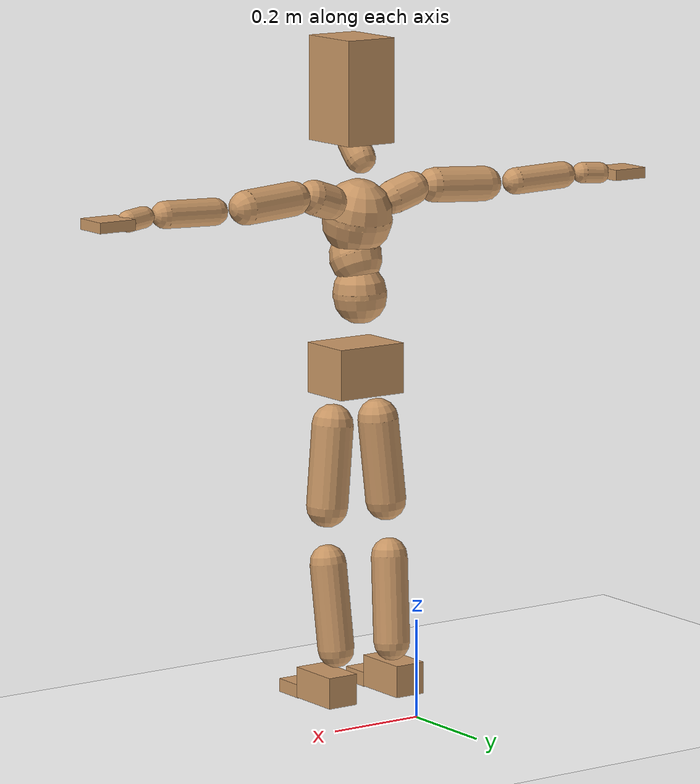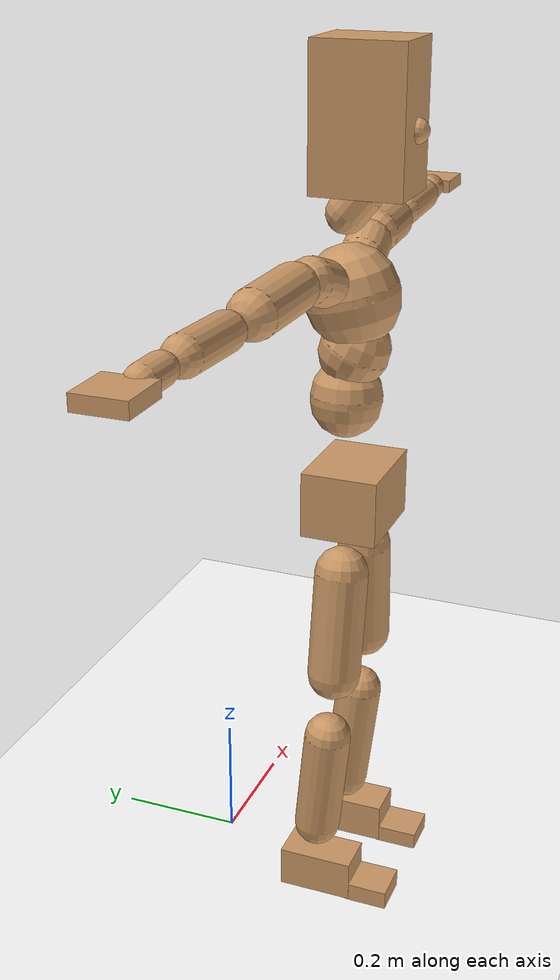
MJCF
<mujoco model="humanoid">
  <option integrator="implicitfast" />

  <visual>
    <global offwidth="1280" offheight="960" />
    <headlight active="1" ambient="0.34 0.34 0.34" diffuse="0.5 0.5 0.5" />
  </visual>

  <default>
    <joint damping="2" stiffness="2" armature="0.01" limited="true" solimplimit="0 .99 .01" />
    <geom condim="1" friction="0.7 0.005 0.0001" solimp=".99 .99 .003" solref="0.015 1" margin="0.001" rgba="0.8 0.6 .4 1" />
    <default class="smplcontact">
      <geom condim="3" friction="1. 0.005 0.0001" solref="0.015 1" solimp="0.98 0.98 0.001" priority="1" />
    </default>
    <default class="stiff_medium">
      <joint stiffness="10" />
    </default>
    <default class="stiff_medium_higher">
      <joint stiffness="50" />
    </default>
    <default class="stiff_high">
      <joint stiffness="100" />
    </default>
  </default>

  <asset>
    <texture type="skybox" builtin="gradient" rgb1="0.99 0.99 0.99" rgb2="0.608 0.828 0.892" width="100" />
    <texture builtin="flat" height="1278" mark="cross" markrgb="1 1 1" name="texgeom" random="0.01" rgb1="0.8 0.6 0.4" rgb2="0.8 0.6 0.4" type="cube" width="127" />
    <texture name="texplane" type="2d" builtin="checker" markrgb="1 1 1" rgb1="0.756 0.772 0.76" rgb2="0.6 0.6 0.6" width="100" height="100" />
    <material name="MatPlane" reflectance="0.5" texture="texplane" texrepeat="1 1" texuniform="true" />
    <material name="geom" texture="texgeom" texuniform="true" />
  </asset>

  <worldbody>
    <light name="tracking_light" pos="0 0 7" dir="0 0 -1" directional="true" cutoff="100" exponent="1" diffuse="1 1 1" specular="0.1 0.1 0.1" mode="trackcom" />
    <camera name="back" pos="0 3 2.4" xyaxes="-1 0 0 0 -1 2" mode="trackcom" />
    <camera name="side" pos="-3 0 2.4" xyaxes="0 -1 0 1 0 2" mode="trackcom" />
    <camera name="front_side" pos="-2.8 -2.8 0.8" xyaxes="0.5 -0.5 0 0.1 0.1 1" mode="trackcom" />
    <geom condim="3" name="floor" pos="0 0 0" rgba="1 1 1 1" size="100 100 .2" type="plane" material="MatPlane" />
    <body name="Pelvis" pos="-0.0018 -0.2233 0.693717" euler="90 0 0">
      <site name="Pelvis" size="0.01" />
      <freejoint name="Pelvis" />
      <geom type="box" pos="-0.0000 -0.0121 -0.0055" size="0.0763794 0.0515865 0.059303" quat="1.0000 0.0000 0.0000 0.0000" density="3165.830099" name="Pelvis" />
      <body name="L_Hip" pos="0.0515531 -0.0677979 -0.00504404">
        <joint name="L_Hip_x" type="hinge" pos="0 0 0" axis="1 0 0" stiffness="10" range="-160.0 22.92" class="stiff_medium" damping="15" />
        <joint name="L_Hip_y" type="hinge" pos="0 0 0" axis="0 1 0" stiffness="10" range="-70.0 70.0" class="stiff_medium" damping="10" />
        <joint name="L_Hip_z" type="hinge" pos="0 0 0" axis="0 0 1" stiffness="10" range="-28.65 90.0" class="stiff_medium" damping="10" />
        <geom type="capsule" density="2040.816327" fromto="0.00511822 -0.0556328 -0.000667594 0.0203245 -0.22268 -0.00267038" size="0.0424851" name="L_Hip" />
        <body name="L_Knee" pos="0.0254427 -0.278312 -0.00333797">
          <joint name="L_Knee_x" type="hinge" pos="0 0 0" axis="1 0 0" range="-5.16 171.89" damping="8" />
          <joint name="L_Knee_y" type="hinge" pos="0 0 0" axis="0 1 0" range="-4.58 6.88" damping="8" />
          <joint name="L_Knee_z" type="hinge" pos="0 0 0" axis="0 0 1" range="-6.88 4.58" damping="8" />
          <geom type="capsule" density="1234.567901" fromto="-0.00200278 -0.059045 -0.00645341 -0.0080853 -0.23618 -0.025962" size="0.037373" name="L_Knee" />
          <body name="L_Ankle" pos="-0.0100881 -0.295225 -0.0324154">
            <joint name="L_Ankle_x" type="hinge" pos="0 0 0" axis="1 0 0" range="-45.84 45.84" class="stiff_medium" damping="6" />
            <joint name="L_Ankle_y" type="hinge" pos="0 0 0" axis="0 1 0" range="-74.48 22.92" class="stiff_medium" damping="3" />
            <joint name="L_Ankle_z" type="hinge" pos="0 0 0" axis="0 0 1" range="-4.58 4.58" class="stiff_medium" damping="6" />
            <geom type="box" pos="0.0172833 -0.0177283 0.0179509" size="0.0333663 0.0320538 0.0587192" quat="1.0000 0.0000 0.0000 0.0000" density="449.071558" name="L_Ankle" class="smplcontact" />
            <body name="L_Toe" pos="0.0195828 -0.0413908 0.0884933">
              <joint name="L_Toe_x" type="hinge" pos="0 0 0" axis="1 0 0" range="-91.67 22.92" />
              <joint name="L_Toe_y" type="hinge" pos="0 0 0" axis="0 1 0" range="-4.58 4.58" />
              <joint name="L_Toe_z" type="hinge" pos="0 0 0" axis="0 0 1" range="-4.58 4.58" />
              <geom type="box" pos="-0.00222531 0.00407974 0.0183959" size="0.0330209 0.0138163 0.0342644" quat="1.0000 0.0000 0.0000 0.0000" density="423.206892" name="L_Toe" class="smplcontact" />
            </body>
          </body>
        </body>
      </body>
      <body name="R_Hip" pos="-0.0502179 -0.0671303 -0.00318962">
        <joint name="R_Hip_x" type="hinge" pos="0 0 0" axis="1 0 0" stiffness="10" range="-160.0 22.92" class="stiff_medium" damping="15" />
        <joint name="R_Hip_y" type="hinge" pos="0 0 0" axis="0 1 0" stiffness="10" range="-70.0 70.0" class="stiff_medium" damping="10" />
        <joint name="R_Hip_z" type="hinge" pos="0 0 0" axis="0 0 1" stiffness="10" range="-90.0 28.65" class="stiff_medium" damping="10" />
        <geom type="capsule" density="2040.816327" fromto="-0.00571164 -0.0567455 -0.00133519 -0.0226982 -0.227056 -0.00526657" size="0.0418633" name="R_Hip" />
        <body name="R_Knee" pos="-0.0284098 -0.283802 -0.00660176">
          <joint name="R_Knee_x" type="hinge" pos="0 0 0" axis="1 0 0" range="-5.16 171.89" damping="8" />
          <joint name="R_Knee_y" type="hinge" pos="0 0 0" axis="0 1 0" range="-6.88 4.58" damping="8" />
          <joint name="R_Knee_z" type="hinge" pos="0 0 0" axis="0 0 1" range="-4.58 6.88" damping="8" />
          <geom type="capsule" density="1234.567901" fromto="0.00237367 -0.0591192 -0.00630505 0.00934632 -0.236402 -0.0250719" size="0.037373" name="R_Knee" />
          <body name="R_Ankle" pos="0.01172 -0.295522 -0.0313769">
            <joint name="R_Ankle_x" type="hinge" pos="0 0 0" axis="1 0 0" range="-45.84 45.84" class="stiff_medium" damping="6" />
            <joint name="R_Ankle_y" type="hinge" pos="0 0 0" axis="0 1 0" range="-22.92 74.48" class="stiff_medium" damping="3" />
            <joint name="R_Ankle_z" type="hinge" pos="0 0 0" axis="0 0 1" range="-4.58 4.58" class="stiff_medium" damping="6" />
            <geom type="box" pos="-0.0157255 -0.0129068 0.0189893" size="0.0333663 0.0330209 0.0597554" quat="1.0000 0.0000 0.0000 0.0000" density="434.700981" name="R_Ankle" class="smplcontact" />
            <body name="R_Toe" pos="-0.018841 -0.0356792 0.0914604">
              <joint name="R_Toe_x" type="hinge" pos="0 0 0" axis="1 0 0" range="-91.67 22.92" />
              <joint name="R_Toe_y" type="hinge" pos="0 0 0" axis="0 1 0" range="-4.58 4.58" />
              <joint name="R_Toe_z" type="hinge" pos="0 0 0" axis="0 0 1" range="-4.58 4.58" />
              <geom type="box" pos="0.00311544 0.00333797 0.0168382" size="0.03309 0.0149216 0.0340571" quat="1.0000 0.0000 0.0000 0.0000" density="407.384095" name="R_Toe" class="smplcontact" />
            </body>
          </body>
        </body>
      </body>
      <body name="Torso" pos="-0.00199298 0.0868938 -0.021285">
        <joint name="Torso_x" type="hinge" pos="0 0 0" axis="1 0 0" range="-25.78 57.3" class="stiff_medium" damping="15" />
        <joint name="Torso_y" type="hinge" pos="0 0 0" axis="0 1 0" range="-57.3 57.3" class="stiff_high" damping="20" />
        <joint name="Torso_z" type="hinge" pos="0 0 0" axis="0 0 1" range="-34.38 34.38" class="stiff_high" damping="20" />
        <geom type="capsule" density="2040.816327" fromto="0.00199298 0.0484692 0.000398596 0.00239157 0.0592313 0.000478315" size="0.0549446" name="Torso" />
        <body name="Spine" pos="0.00438455 0.10778 0.00087691">
          <joint name="Spine_x" type="hinge" pos="0 0 0" axis="1 0 0" stiffness="10" range="-25.78 57.3" class="stiff_medium" damping="15" />
          <joint name="Spine_y" type="hinge" pos="0 0 0" axis="0 1 0" stiffness="10" range="-57.3 57.3" class="stiff_high" damping="8" />
          <joint name="Spine_z" type="hinge" pos="0 0 0" axis="0 0 1" stiffness="20" range="-34.38 34.38" class="stiff_high" damping="12" />
          <geom type="capsule" density="2040.816327" fromto="0.000558034 0.0189731 0.00908798 0.000637753 0.0231983 0.0111607" size="0.0539443" name="Spine" />
          <body name="Chest" pos="0.00119579 0.0421714 0.0202487">
            <joint name="Chest_x" type="hinge" pos="0 0 0" axis="1 0 0" stiffness="10" range="-25.78 57.3" class="stiff_medium" damping="15" />
            <joint name="Chest_y" type="hinge" pos="0 0 0" axis="0 1 0" stiffness="10" range="-57.3 57.3" class="stiff_high" damping="8" />
            <joint name="Chest_z" type="hinge" pos="0 0 0" axis="0 0 1" stiffness="20" range="-34.38 34.38" class="stiff_high" damping="12" />
            <geom type="capsule" density="2040.816327" fromto="-0.000717472 0.0543684 -0.0137914 -0.000797191 0.066406 -0.0169005" size="0.0715923" name="Chest" />
            <body name="Neck" pos="-0.00223214 0.170519 -0.0341995">
              <joint name="Neck_x" type="hinge" pos="0 0 0" axis="1 0 0" range="-28.65 57.3" class="stiff_medium_higher" damping="10" />
              <joint name="Neck_y" type="hinge" pos="0 0 0" axis="0 1 0" range="-40.11 40.11" class="stiff_medium_higher" damping="10" />
              <joint name="Neck_z" type="hinge" pos="0 0 0" axis="0 0 1" range="-40.11 40.11" class="stiff_medium_higher" damping="10" />
              <geom type="capsule" density="1000" fromto="0.000797191 0.0103635 0.00821107 0.00326848 0.0414539 0.0327646" size="0.0311519" name="Neck" />
              <body name="Head" pos="0.00498363 0.0622953 0.0491654">
                <joint name="Head_x" type="hinge" pos="0 0 0" axis="1 0 0" range="-28.65 57.3" class="stiff_medium_higher" damping="2" />
                <joint name="Head_y" type="hinge" pos="0 0 0" axis="0 1 0" range="-40.11 40.11" class="stiff_medium_higher" damping="2" />
                <joint name="Head_z" type="hinge" pos="0 0 0" axis="0 0 1" range="-40.11 40.11" class="stiff_medium_higher" damping="2" />
                <geom type="box" pos="-0.00402524 0.0839549 -0.0111173" size="0.0554893 0.105668 0.0695906" quat="1.0000 0.0000 0.0000 0.0000" density="1018.069894" name="Head" />
                <geom type="capsule" name="nose" size="0.0183133 0.00915666" pos="0 0.0670873 0.0479195" quat="1 0 0 0" mass="0" contype="0" conaffinity="0" />
              </body>
            </body>
            <body name="L_Thorax" pos="0.0602206 0.0930056 -0.0260599">
              <joint name="L_Thorax_x" type="hinge" pos="0 0 0" axis="1 0 0" range="-10.89 4.58" class="stiff_medium_higher" damping="20" />
              <joint name="L_Thorax_y" type="hinge" pos="0 0 0" axis="0 1 0" range="-28.65 17.19" class="stiff_medium_higher" damping="20" />
              <joint name="L_Thorax_z" type="hinge" pos="0 0 0" axis="0 0 1" range="-31.51 40.11" class="stiff_medium_higher" damping="20" />
              <geom type="capsule" density="1000" fromto="0.0139088 0.00466174 -0.0013756 0.0556352 0.018647 -0.00542596" size="0.0352323" name="L_Thorax" />
              <body name="L_Shoulder" pos="0.069544 0.0233087 -0.00680156">
                <joint name="L_Shoulder_x" type="hinge" pos="0 0 0" axis="1 0 0" range="-97.4 97.4" class="stiff_medium" damping="6" />
                <joint name="L_Shoulder_y" type="hinge" pos="0 0 0" axis="0 1 0" range="-108.86 80.21" class="stiff_medium" damping="6" />
                <joint name="L_Shoulder_z" type="hinge" pos="0 0 0" axis="0 0 1" range="-97.4 85.94" class="stiff_medium" damping="6" />
                <geom type="capsule" density="1000" fromto="0.039663 -0.00198697 -0.00420321 0.158729 -0.00779505 -0.0168128" size="0.0349618" name="L_Shoulder" />
                <body name="L_Elbow" pos="0.198392 -0.00978202 -0.0210161">
                  <joint name="L_Elbow_x" type="hinge" pos="0 0 0" axis="1 0 0" range="-17.19 4.58" damping="5" />
                  <joint name="L_Elbow_y" type="hinge" pos="0 0 0" axis="0 1 0" range="-180.0 17.19" damping="5" />
                  <joint name="L_Elbow_z" type="hinge" pos="0 0 0" axis="0 0 1" range="-100.84 4.58" damping="5" />
                  <geom type="capsule" density="1000" fromto="0.0380582 0.0013756 -0.000152844 0.152386 0.00550239 -0.000687798" size="0.0273879" name="L_Elbow" />
                  <body name="L_Wrist" pos="0.190444 0.00687798 -0.000917064">
                    <joint name="L_Wrist_x" type="hinge" pos="0 0 0" axis="1 0 0" range="-180.0 22.92" />
                    <joint name="L_Wrist_y" type="hinge" pos="0 0 0" axis="0 1 0" range="-17.19 17.19" />
                    <joint name="L_Wrist_z" type="hinge" pos="0 0 0" axis="0 0 1" range="-22.92 22.92" />
                    <geom type="capsule" density="1000" fromto="0.0128389 -0.00122275 -0.00229266 0.0513556 -0.00496743 -0.00917064" size="0.0215045" name="L_Wrist" class="smplcontact" />
                    <body name="L_Hand" pos="0.0641945 -0.00626661 -0.0113869">
                      <joint name="L_Hand_x" type="hinge" pos="0 0 0" axis="1 0 0" range="-17.19 17.19" />
                      <joint name="L_Hand_y" type="hinge" pos="0 0 0" axis="0 1 0" range="-51.57 51.57" />
                      <joint name="L_Hand_z" type="hinge" pos="0 0 0" axis="0 0 1" range="-91.67 91.67" />
                      <geom type="box" pos="0.0376761 0.00076422 -0.00443248" size="0.0395602 0.0106846 0.0363819" quat="1.0000 0.0000 0.0000 0.0000" density="400.552564" name="L_Hand" class="smplcontact" />
                    </body>
                  </body>
                </body>
              </body>
            </body>
            <body name="R_Thorax" pos="-0.0625132 0.0907894 -0.0294989">
              <joint name="R_Thorax_x" type="hinge" pos="0 0 0" axis="1 0 0" range="-10.89 4.58" class="stiff_medium_higher" damping="20" />
              <joint name="R_Thorax_y" type="hinge" pos="0 0 0" axis="0 1 0" range="-17.19 28.65" class="stiff_medium_higher" damping="20" />
              <joint name="R_Thorax_z" type="hinge" pos="0 0 0" axis="0 0 1" range="-40.11 31.51" class="stiff_medium_higher" damping="20" />
              <geom type="capsule" density="1000" fromto="-0.014673 0.00496743 -0.0013756 -0.0586921 0.0198697 -0.00557881" size="0.034556" name="R_Thorax" />
              <body name="R_Shoulder" pos="-0.0733651 0.0249136 -0.0069544">
                <joint name="R_Shoulder_x" type="hinge" pos="0 0 0" axis="1 0 0" range="-97.4 97.4" class="stiff_medium" damping="6" />
                <joint name="R_Shoulder_y" type="hinge" pos="0 0 0" axis="0 1 0" range="-80.21 108.86" class="stiff_medium" damping="6" />
                <joint name="R_Shoulder_z" type="hinge" pos="0 0 0" axis="0 0 1" range="-85.94 97.4" class="stiff_medium" damping="6" />
                <geom type="capsule" density="1000" fromto="-0.038746 -0.00206339 -0.00328615 -0.155137 -0.00817716 -0.0130682" size="0.0359085" name="R_Shoulder" />
                <body name="R_Elbow" pos="-0.193883 -0.0101641 -0.0163543">
                  <joint name="R_Elbow_x" type="hinge" pos="0 0 0" axis="1 0 0" range="-17.19 4.58" damping="5" />
                  <joint name="R_Elbow_y" type="hinge" pos="0 0 0" axis="0 1 0" range="-17.19 180.0" damping="5" />
                  <joint name="R_Elbow_z" type="hinge" pos="0 0 0" axis="0 0 1" range="-4.58 100.84" damping="5" />
                  <geom type="capsule" density="1000" fromto="-0.0390517 0.00122275 -0.000840642 -0.156054 0.00473817 -0.00336257" size="0.0275907" name="R_Elbow" />
                  <body name="R_Wrist" pos="-0.195105 0.00596092 -0.00427963">
                    <joint name="R_Wrist_x" type="hinge" pos="0 0 0" axis="1 0 0" range="-180.0 22.92" />
                    <joint name="R_Wrist_y" type="hinge" pos="0 0 0" axis="0 1 0" range="-17.19 17.19" />
                    <joint name="R_Wrist_z" type="hinge" pos="0 0 0" axis="0 0 1" range="-22.92 22.92" />
                    <geom type="capsule" density="1000" fromto="-0.0129153 -0.000917064 -0.00160486 -0.0517377 -0.00374468 -0.00634303" size="0.0220455" name="R_Wrist" class="smplcontact" />
                    <body name="R_Hand" pos="-0.064653 -0.00466174 -0.00787147">
                      <joint name="R_Hand_x" type="hinge" pos="0 0 0" axis="1 0 0" range="-17.19 17.19" />
                      <joint name="R_Hand_y" type="hinge" pos="0 0 0" axis="0 1 0" range="-51.57 51.57" />
                      <joint name="R_Hand_z" type="hinge" pos="0 0 0" axis="0 0 1" range="-91.67 91.67" />
                      <geom type="box" pos="-0.035307 -0.000687798 -0.00603734" size="0.0384782 0.0110904 0.0369229" quat="1.0000 0.0000 0.0000 0.0000" density="403.679611" name="R_Hand" class="smplcontact" />
                    </body>
                  </body>
                </body>
              </body>
            </body>
          </body>
        </body>
      </body>
    </body>
  </worldbody>
  <actuator>
    <general name="L_Hip_x" joint="L_Hip_x" biastype="affine" gainprm="287.33006409732246" biasprm="-215.3247604770444 -180 -2.0" ctrllimited="true" ctrlrange="-1 1" forcerange="-360 360" />
    <general name="L_Hip_y" joint="L_Hip_y" biastype="affine" gainprm="219.9114857512855" biasprm="0.0 -180 -2.0" ctrllimited="true" ctrlrange="-1 1" forcerange="-360 360" />
    <general name="L_Hip_z" joint="L_Hip_z" biastype="affine" gainprm="186.3749841742145" biasprm="96.3683546488669 -180 -2.0" ctrllimited="true" ctrlrange="-1 1" forcerange="-360 360" />
    <general name="L_Knee_x" joint="L_Knee_x" biastype="affine" gainprm="278.10948965903646" biasprm="261.8988715665131 -180 -2.0" ctrllimited="true" ctrlrange="-1 1" forcerange="-360 360" />
    <general name="L_Knee_y" joint="L_Knee_y" biastype="affine" gainprm="18.001325905069514" biasprm="3.612831551628262 -180 -2.0" ctrllimited="true" ctrlrange="-1 1" forcerange="-360 360" />
    <general name="L_Knee_z" joint="L_Knee_z" biastype="affine" gainprm="18.001325905069514" biasprm="-3.612831551628262 -180 -2.0" ctrllimited="true" ctrlrange="-1 1" forcerange="-360 360" />
    <general name="L_Ankle_x" joint="L_Ankle_x" biastype="affine" gainprm="72.00530362027807" biasprm="0.0 -90 -2.0" ctrllimited="true" ctrlrange="-1 1" forcerange="-180 180" />
    <general name="L_Ankle_y" joint="L_Ankle_y" biastype="affine" gainprm="76.49778111491148" biasprm="-40.49512930477244 -90 -2.0" ctrllimited="true" ctrlrange="-1 1" forcerange="-180 180" />
    <general name="L_Ankle_z" joint="L_Ankle_z" biastype="affine" gainprm="7.1942471767206255" biasprm="0.0 -90 -2.0" ctrllimited="true" ctrlrange="-1 1" forcerange="-180 180" />
    <general name="L_Toe_x" joint="L_Toe_x" biastype="affine" gainprm="71.99902043497087" biasprm="-43.19689898685965 -72 -0.8" ctrllimited="true" ctrlrange="-1 1" forcerange="-144 144" />
    <general name="L_Toe_y" joint="L_Toe_y" biastype="affine" gainprm="5.755397741376501" biasprm="0.0 -72 -0.8" ctrllimited="true" ctrlrange="-1 1" forcerange="-144 144" />
    <general name="L_Toe_z" joint="L_Toe_z" biastype="affine" gainprm="5.755397741376501" biasprm="0.0 -72 -0.8" ctrllimited="true" ctrlrange="-1 1" forcerange="-144 144" />
    <general name="R_Hip_x" joint="R_Hip_x" biastype="affine" gainprm="287.33006409732246" biasprm="-215.3247604770444 -180 -2.0" ctrllimited="true" ctrlrange="-1 1" forcerange="-360 360" />
    <general name="R_Hip_y" joint="R_Hip_y" biastype="affine" gainprm="219.9114857512855" biasprm="0.0 -180 -2.0" ctrllimited="true" ctrlrange="-1 1" forcerange="-360 360" />
    <general name="R_Hip_z" joint="R_Hip_z" biastype="affine" gainprm="186.3749841742145" biasprm="-96.3683546488669 -180 -2.0" ctrllimited="true" ctrlrange="-1 1" forcerange="-360 360" />
    <general name="R_Knee_x" joint="R_Knee_x" biastype="affine" gainprm="278.10948965903646" biasprm="261.8988715665131 -180 -2.0" ctrllimited="true" ctrlrange="-1 1" forcerange="-360 360" />
    <general name="R_Knee_y" joint="R_Knee_y" biastype="affine" gainprm="18.001325905069514" biasprm="-3.612831551628262 -180 -2.0" ctrllimited="true" ctrlrange="-1 1" forcerange="-360 360" />
    <general name="R_Knee_z" joint="R_Knee_z" biastype="affine" gainprm="18.001325905069514" biasprm="3.612831551628262 -180 -2.0" ctrllimited="true" ctrlrange="-1 1" forcerange="-360 360" />
    <general name="R_Ankle_x" joint="R_Ankle_x" biastype="affine" gainprm="72.00530362027807" biasprm="0.0 -90 -2.0" ctrllimited="true" ctrlrange="-1 1" forcerange="-180 180" />
    <general name="R_Ankle_y" joint="R_Ankle_y" biastype="affine" gainprm="76.49778111491148" biasprm="40.49512930477244 -90 -2.0" ctrllimited="true" ctrlrange="-1 1" forcerange="-180 180" />
    <general name="R_Ankle_z" joint="R_Ankle_z" biastype="affine" gainprm="7.1942471767206255" biasprm="0.0 -90 -2.0" ctrllimited="true" ctrlrange="-1 1" forcerange="-180 180" />
    <general name="R_Toe_x" joint="R_Toe_x" biastype="affine" gainprm="71.99902043497087" biasprm="-43.19689898685965 -72 -0.8" ctrllimited="true" ctrlrange="-1 1" forcerange="-144 144" />
    <general name="R_Toe_y" joint="R_Toe_y" biastype="affine" gainprm="5.755397741376501" biasprm="0.0 -72 -0.8" ctrllimited="true" ctrlrange="-1 1" forcerange="-144 144" />
    <general name="R_Toe_z" joint="R_Toe_z" biastype="affine" gainprm="5.755397741376501" biasprm="0.0 -72 -0.8" ctrllimited="true" ctrlrange="-1 1" forcerange="-144 144" />
    <general name="Torso_x" joint="Torso_x" biastype="affine" gainprm="174.00234510682668" biasprm="66.0153336274335 -240 -4.0" ctrllimited="true" ctrlrange="-1 1" forcerange="-360 360" />
    <general name="Torso_y" joint="Torso_y" biastype="affine" gainprm="240.0176787342602" biasprm="0.0 -240 -4.0" ctrllimited="true" ctrlrange="-1 1" forcerange="-360 360" />
    <general name="Torso_z" joint="Torso_z" biastype="affine" gainprm="144.01060724055614" biasprm="0.0 -240 -4.0" ctrllimited="true" ctrlrange="-1 1" forcerange="-360 360" />
    <general name="Spine_x" joint="Spine_x" biastype="affine" gainprm="174.00234510682668" biasprm="66.0153336274335 -240 -4.0" ctrllimited="true" ctrlrange="-1 1" forcerange="-360 360" />
    <general name="Spine_y" joint="Spine_y" biastype="affine" gainprm="240.0176787342602" biasprm="0.0 -240 -4.0" ctrllimited="true" ctrlrange="-1 1" forcerange="-360 360" />
    <general name="Spine_z" joint="Spine_z" biastype="affine" gainprm="144.01060724055614" biasprm="0.0 -240 -4.0" ctrllimited="true" ctrlrange="-1 1" forcerange="-360 360" />
    <general name="Chest_x" joint="Chest_x" biastype="affine" gainprm="174.00234510682668" biasprm="66.0153336274335 -240 -4.0" ctrllimited="true" ctrlrange="-1 1" forcerange="-360 360" />
    <general name="Chest_y" joint="Chest_y" biastype="affine" gainprm="240.0176787342602" biasprm="0.0 -240 -4.0" ctrllimited="true" ctrlrange="-1 1" forcerange="-360 360" />
    <general name="Chest_z" joint="Chest_z" biastype="affine" gainprm="144.01060724055614" biasprm="0.0 -240 -4.0" ctrllimited="true" ctrlrange="-1 1" forcerange="-360 360" />
    <general name="Neck_x" joint="Neck_x" biastype="affine" gainprm="27.00198885760427" biasprm="9.000662952534757 -36 -0.8" ctrllimited="true" ctrlrange="-1 1" forcerange="-72 72" />
    <general name="Neck_y" joint="Neck_y" biastype="affine" gainprm="25.20185626709732" biasprm="0.0 -36 -0.8" ctrllimited="true" ctrlrange="-1 1" forcerange="-72 72" />
    <general name="Neck_z" joint="Neck_z" biastype="affine" gainprm="25.20185626709732" biasprm="0.0 -36 -0.8" ctrllimited="true" ctrlrange="-1 1" forcerange="-72 72" />
    <general name="Head_x" joint="Head_x" biastype="affine" gainprm="18.001325905069514" biasprm="6.000441968356505 -24 -0.8" ctrllimited="true" ctrlrange="-1 1" forcerange="-48 48" />
    <general name="Head_y" joint="Head_y" biastype="affine" gainprm="16.801237511398213" biasprm="0.0 -24 -0.8" ctrllimited="true" ctrlrange="-1 1" forcerange="-48 48" />
    <general name="Head_z" joint="Head_z" biastype="affine" gainprm="16.801237511398213" biasprm="0.0 -24 -0.8" ctrllimited="true" ctrlrange="-1 1" forcerange="-48 48" />
    <general name="L_Thorax_x" joint="L_Thorax_x" biastype="affine" gainprm="16.200146117011364" biasprm="-6.6078165480505335 -120 -1.6" ctrllimited="true" ctrlrange="-1 1" forcerange="-240 240" />
    <general name="L_Thorax_y" joint="L_Thorax_y" biastype="affine" gainprm="48.00353574685204" biasprm="-12.00088393671301 -120 -1.6" ctrllimited="true" ctrlrange="-1 1" forcerange="-240 240" />
    <general name="L_Thorax_z" joint="L_Thorax_z" biastype="affine" gainprm="75.00028861670033" biasprm="9.00589894029074 -120 -1.6" ctrllimited="true" ctrlrange="-1 1" forcerange="-240 240" />
    <general name="L_Shoulder_x" joint="L_Shoulder_x" biastype="affine" gainprm="81.5976331892389" biasprm="0.0 -48 -1.6" ctrllimited="true" ctrlrange="-1 1" forcerange="-96 96" />
    <general name="L_Shoulder_y" joint="L_Shoulder_y" biastype="affine" gainprm="79.19745640189629" biasprm="-12.00088393671301 -48 -1.6" ctrllimited="true" ctrlrange="-1 1" forcerange="-96 96" />
    <general name="L_Shoulder_z" joint="L_Shoulder_z" biastype="affine" gainprm="76.79727961455369" biasprm="-4.800353574685214 -48 -1.6" ctrllimited="true" ctrlrange="-1 1" forcerange="-96 96" />
    <general name="L_Elbow_x" joint="L_Elbow_x" biastype="affine" gainprm="13.67849441372996" biasprm="-7.923096672353461 -72 -0.8" ctrllimited="true" ctrlrange="-1 1" forcerange="-144 144" />
    <general name="L_Elbow_y" joint="L_Elbow_y" biastype="affine" gainprm="123.89813107227425" biasprm="-102.29653998619085 -72 -0.8" ctrllimited="true" ctrlrange="-1 1" forcerange="-144 144" />
    <general name="L_Elbow_z" joint="L_Elbow_z" biastype="affine" gainprm="66.23733950828719" biasprm="-60.4819417669107 -72 -0.8" ctrllimited="true" ctrlrange="-1 1" forcerange="-144 144" />
    <general name="L_Wrist_x" joint="L_Wrist_x" biastype="affine" gainprm="21.24973270888136" biasprm="-16.449379134196157 -12 -0.8" ctrllimited="true" ctrlrange="-1 1" forcerange="-24 24" />
    <general name="L_Wrist_y" joint="L_Wrist_y" biastype="affine" gainprm="3.6002651810139037" biasprm="0.0 -12 -0.8" ctrllimited="true" ctrlrange="-1 1" forcerange="-24 24" />
    <general name="L_Wrist_z" joint="L_Wrist_z" biastype="affine" gainprm="4.800353574685205" biasprm="0.0 -12 -0.8" ctrllimited="true" ctrlrange="-1 1" forcerange="-24 24" />
    <general name="L_Hand_x" joint="L_Hand_x" biastype="affine" gainprm="3.6002651810139037" biasprm="0.0 -12 -0.8" ctrllimited="true" ctrlrange="-1 1" forcerange="-24 24" />
    <general name="L_Hand_y" joint="L_Hand_y" biastype="affine" gainprm="10.800795543041708" biasprm="0.0 -12 -0.8" ctrllimited="true" ctrlrange="-1 1" forcerange="-24 24" />
    <general name="L_Hand_z" joint="L_Hand_z" biastype="affine" gainprm="19.199319903638422" biasprm="0.0 -12 -0.8" ctrllimited="true" ctrlrange="-1 1" forcerange="-24 24" />
    <general name="R_Thorax_x" joint="R_Thorax_x" biastype="affine" gainprm="16.200146117011364" biasprm="-6.6078165480505335 -120 -1.6" ctrllimited="true" ctrlrange="-1 1" forcerange="-240 240" />
    <general name="R_Thorax_y" joint="R_Thorax_y" biastype="affine" gainprm="48.00353574685204" biasprm="12.000883936713002 -120 -1.6" ctrllimited="true" ctrlrange="-1 1" forcerange="-240 240" />
    <general name="R_Thorax_z" joint="R_Thorax_z" biastype="affine" gainprm="75.00028861670033" biasprm="-9.00589894029074 -120 -1.6" ctrllimited="true" ctrlrange="-1 1" forcerange="-240 240" />
    <general name="R_Shoulder_x" joint="R_Shoulder_x" biastype="affine" gainprm="81.5976331892389" biasprm="0.0 -48 -1.6" ctrllimited="true" ctrlrange="-1 1" forcerange="-96 96" />
    <general name="R_Shoulder_y" joint="R_Shoulder_y" biastype="affine" gainprm="79.19745640189629" biasprm="12.00088393671301 -48 -1.6" ctrllimited="true" ctrlrange="-1 1" forcerange="-96 96" />
    <general name="R_Shoulder_z" joint="R_Shoulder_z" biastype="affine" gainprm="76.79727961455369" biasprm="4.800353574685204 -48 -1.6" ctrllimited="true" ctrlrange="-1 1" forcerange="-96 96" />
    <general name="R_Elbow_x" joint="R_Elbow_x" biastype="affine" gainprm="13.67849441372996" biasprm="-7.923096672353461 -72 -0.8" ctrllimited="true" ctrlrange="-1 1" forcerange="-144 144" />
    <general name="R_Elbow_y" joint="R_Elbow_y" biastype="affine" gainprm="123.89813107227425" biasprm="102.29653998619085 -72 -0.8" ctrllimited="true" ctrlrange="-1 1" forcerange="-144 144" />
    <general name="R_Elbow_z" joint="R_Elbow_z" biastype="affine" gainprm="66.23733950828719" biasprm="60.481941766910694 -72 -0.8" ctrllimited="true" ctrlrange="-1 1" forcerange="-144 144" />
    <general name="R_Wrist_x" joint="R_Wrist_x" biastype="affine" gainprm="21.24973270888136" biasprm="-16.449379134196157 -12 -0.8" ctrllimited="true" ctrlrange="-1 1" forcerange="-24 24" />
    <general name="R_Wrist_y" joint="R_Wrist_y" biastype="affine" gainprm="3.6002651810139037" biasprm="0.0 -12 -0.8" ctrllimited="true" ctrlrange="-1 1" forcerange="-24 24" />
    <general name="R_Wrist_z" joint="R_Wrist_z" biastype="affine" gainprm="4.800353574685205" biasprm="0.0 -12 -0.8" ctrllimited="true" ctrlrange="-1 1" forcerange="-24 24" />
    <general name="R_Hand_x" joint="R_Hand_x" biastype="affine" gainprm="3.6002651810139037" biasprm="0.0 -12 -0.8" ctrllimited="true" ctrlrange="-1 1" forcerange="-24 24" />
    <general name="R_Hand_y" joint="R_Hand_y" biastype="affine" gainprm="10.800795543041708" biasprm="0.0 -12 -0.8" ctrllimited="true" ctrlrange="-1 1" forcerange="-24 24" />
    <general name="R_Hand_z" joint="R_Hand_z" biastype="affine" gainprm="19.199319903638422" biasprm="0.0 -12 -0.8" ctrllimited="true" ctrlrange="-1 1" forcerange="-24 24" />
  </actuator>
  <contact>
    <exclude body1="Torso" body2="Chest" />
    <exclude body1="Head" body2="Chest" />
    <exclude body1="R_Knee" body2="R_Toe" />
    <exclude body1="R_Knee" body2="L_Ankle" />
    <exclude body1="R_Knee" body2="L_Toe" />
    <exclude body1="L_Knee" body2="L_Toe" />
    <exclude body1="L_Knee" body2="R_Ankle" />
    <exclude body1="L_Knee" body2="R_Toe" />
    <exclude body1="L_Shoulder" body2="Chest" />
    <exclude body1="R_Shoulder" body2="Chest" />
  </contact>
  <sensor>
    <framelinvel name="sensor_Pelvis_framelinvel" objtype="xbody" objname="Pelvis" />
    <framelinvel name="sensor_L_Hip_framelinvel" objtype="xbody" objname="L_Hip" />
    <framelinvel name="sensor_L_Knee_framelinvel" objtype="xbody" objname="L_Knee" />
    <framelinvel name="sensor_L_Ankle_framelinvel" objtype="xbody" objname="L_Ankle" />
    <framelinvel name="sensor_L_Toe_framelinvel" objtype="xbody" objname="L_Toe" />
    <framelinvel name="sensor_R_Hip_framelinvel" objtype="xbody" objname="R_Hip" />
    <framelinvel name="sensor_R_Knee_framelinvel" objtype="xbody" objname="R_Knee" />
    <framelinvel name="sensor_R_Ankle_framelinvel" objtype="xbody" objname="R_Ankle" />
    <framelinvel name="sensor_R_Toe_framelinvel" objtype="xbody" objname="R_Toe" />
    <framelinvel name="sensor_Torso_framelinvel" objtype="xbody" objname="Torso" />
    <framelinvel name="sensor_Spine_framelinvel" objtype="xbody" objname="Spine" />
    <framelinvel name="sensor_Chest_framelinvel" objtype="xbody" objname="Chest" />
    <framelinvel name="sensor_Neck_framelinvel" objtype="xbody" objname="Neck" />
    <framelinvel name="sensor_Head_framelinvel" objtype="xbody" objname="Head" />
    <framelinvel name="sensor_L_Thorax_framelinvel" objtype="xbody" objname="L_Thorax" />
    <framelinvel name="sensor_L_Shoulder_framelinvel" objtype="xbody" objname="L_Shoulder" />
    <framelinvel name="sensor_L_Elbow_framelinvel" objtype="xbody" objname="L_Elbow" />
    <framelinvel name="sensor_L_Wrist_framelinvel" objtype="xbody" objname="L_Wrist" />
    <framelinvel name="sensor_L_Hand_framelinvel" objtype="xbody" objname="L_Hand" />
    <framelinvel name="sensor_R_Thorax_framelinvel" objtype="xbody" objname="R_Thorax" />
    <framelinvel name="sensor_R_Shoulder_framelinvel" objtype="xbody" objname="R_Shoulder" />
    <framelinvel name="sensor_R_Elbow_framelinvel" objtype="xbody" objname="R_Elbow" />
    <framelinvel name="sensor_R_Wrist_framelinvel" objtype="xbody" objname="R_Wrist" />
    <framelinvel name="sensor_R_Hand_framelinvel" objtype="xbody" objname="R_Hand" />
    <frameangvel name="sensor_Pelvis_frameangvel" objtype="xbody" objname="Pelvis" />
    <frameangvel name="sensor_L_Hip_frameangvel" objtype="xbody" objname="L_Hip" />
    <frameangvel name="sensor_L_Knee_frameangvel" objtype="xbody" objname="L_Knee" />
    <frameangvel name="sensor_L_Ankle_frameangvel" objtype="xbody" objname="L_Ankle" />
    <frameangvel name="sensor_L_Toe_frameangvel" objtype="xbody" objname="L_Toe" />
    <frameangvel name="sensor_R_Hip_frameangvel" objtype="xbody" objname="R_Hip" />
    <frameangvel name="sensor_R_Knee_frameangvel" objtype="xbody" objname="R_Knee" />
    <frameangvel name="sensor_R_Ankle_frameangvel" objtype="xbody" objname="R_Ankle" />
    <frameangvel name="sensor_R_Toe_frameangvel" objtype="xbody" objname="R_Toe" />
    <frameangvel name="sensor_Torso_frameangvel" objtype="xbody" objname="Torso" />
    <frameangvel name="sensor_Spine_frameangvel" objtype="xbody" objname="Spine" />
    <frameangvel name="sensor_Chest_frameangvel" objtype="xbody" objname="Chest" />
    <frameangvel name="sensor_Neck_frameangvel" objtype="xbody" objname="Neck" />
    <frameangvel name="sensor_Head_frameangvel" objtype="xbody" objname="Head" />
    <frameangvel name="sensor_L_Thorax_frameangvel" objtype="xbody" objname="L_Thorax" />
    <frameangvel name="sensor_L_Shoulder_frameangvel" objtype="xbody" objname="L_Shoulder" />
    <frameangvel name="sensor_L_Elbow_frameangvel" objtype="xbody" objname="L_Elbow" />
    <frameangvel name="sensor_L_Wrist_frameangvel" objtype="xbody" objname="L_Wrist" />
    <frameangvel name="sensor_L_Hand_frameangvel" objtype="xbody" objname="L_Hand" />
    <frameangvel name="sensor_R_Thorax_frameangvel" objtype="xbody" objname="R_Thorax" />
    <frameangvel name="sensor_R_Shoulder_frameangvel" objtype="xbody" objname="R_Shoulder" />
    <frameangvel name="sensor_R_Elbow_frameangvel" objtype="xbody" objname="R_Elbow" />
    <frameangvel name="sensor_R_Wrist_frameangvel" objtype="xbody" objname="R_Wrist" />
    <frameangvel name="sensor_R_Hand_frameangvel" objtype="xbody" objname="R_Hand" />
    <subtreelinvel name="Chest_subtreelinvel" body="Chest" />
    <gyro name="Pelvis_gyro" site="Pelvis" />
  </sensor>
</mujoco>
